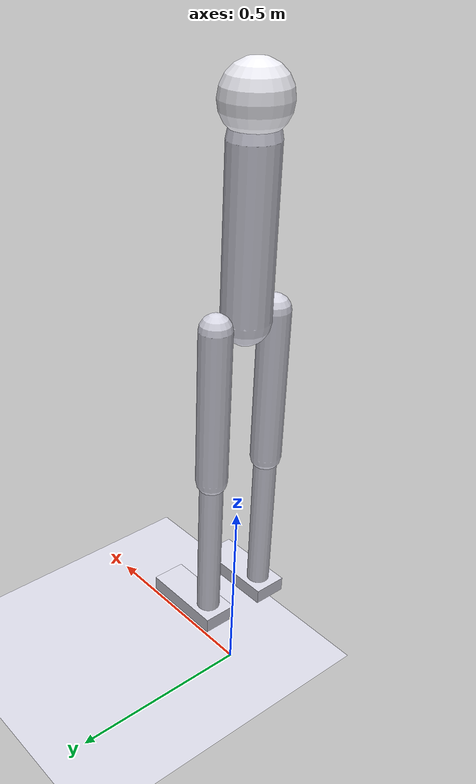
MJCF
<mujoco model="nadir_bipedal_walker">
  <compiler angle="degree" coordinate="local"/>
  <option timestep="0.005" integrator="RK4"/>

  <default>
    <joint limited="true" damping="0.1" armature="0.01"/>
    <geom contype="1" conaffinity="1" friction="1.2 0.1 0.1" rgba="0.85 0.85 0.9 1"/>
    <motor ctrlrange="-1 1" ctrllimited="true"/>
  </default>

  <asset>
    <texture type="skybox" builtin="gradient" width="256" height="256" rgb1="0.15 0.18 0.25" rgb2="0.02 0.03 0.05"/>
    <texture name="texplane" type="2d" builtin="checker" rgb1="0.2 0.25 0.3" rgb2="0.12 0.15 0.18" width="512" height="512"/>
    <material name="MatPlane" texture="texplane" texrepeat="50 50" texuniform="true" reflectance="0.1"/>

    <material name="TorsoMat" rgba="0.15 0.15 0.2 1" specular="0.4" shininess="0.5"/>
    <material name="RightLegMat" rgba="0.9 0.3 0.25 1" specular="0.3" shininess="0.4"/>
    <material name="LeftLegMat" rgba="0.2 0.7 0.85 1" specular="0.3" shininess="0.4"/>
    <material name="FootMat" rgba="0.1 0.1 0.12 1" specular="0.2"/>
  </asset>

  <worldbody>
    <light directional="true" diffuse="0.9 0.9 0.9" specular="0.3 0.3 0.3" pos="0 -2 5" dir="0 0.5 -1"/>
    <light directional="true" diffuse="0.4 0.4 0.5" specular="0.1 0.1 0.1" pos="0 2 3" dir="0 -0.5 -1"/>
    <geom name="floor" type="plane" pos="0 0 0" size="100 100 1" material="MatPlane"/>

    <!-- Torso / Base Body -->
    <body name="torso" pos="0 0 1.25">
      <camera name="track" mode="trackcom" pos="0 -3.2 0.4" xyaxes="1 0 0 0 0 1"/>
      <joint name="rootx" type="slide" axis="1 0 0" pos="0 0 0" limited="false" damping="0" armature="0"/>
      <joint name="rootz" type="slide" axis="0 0 1" pos="0 0 0" limited="false" damping="0" armature="0"/>
      <joint name="rooty" type="hinge" axis="0 1 0" pos="0 0 0" limited="false" damping="0" armature="0"/>

      <!-- Torso Geometry -->
      <geom name="torso_geom" type="capsule" fromto="0 0 -0.2 0 0 0.2" size="0.06" material="TorsoMat" mass="4.0"/>
      <geom name="head_geom" type="sphere" pos="0 0 0.28" size="0.08" rgba="0.95 0.95 0.98 1" mass="1.0"/>
      <site name="imu_site" pos="0 0 0"/>

      <!-- Right Leg (Color: Coral Red) -->
      <body name="thigh_right" pos="0 -0.09 -0.2">
        <joint name="thigh_joint_right" type="hinge" pos="0 0 0" axis="0 1 0" range="-150 0"/>
        <geom name="thigh_geom_right" type="capsule" fromto="0 0 0 0 0 -0.4" size="0.04" material="RightLegMat" mass="1.5"/>
        <body name="leg_right" pos="0 0 -0.4">
          <joint name="leg_joint_right" type="hinge" pos="0 0 0" axis="0 1 0" range="-150 0"/>
          <geom name="leg_geom_right" type="capsule" fromto="0 0 0 0 0 -0.4" size="0.03" material="RightLegMat" mass="1.2"/>
          <body name="foot_right" pos="0 0 -0.4">
            <joint name="foot_joint_right" type="hinge" pos="0 0 0" axis="0 1 0" range="-45 45"/>
            <geom name="foot_geom_right" type="box" pos="0.06 0 -0.02" size="0.11 0.045 0.02" material="FootMat" mass="0.5"/>
            <site name="touch_foot_right" pos="0.06 0 -0.04" size="0.04 0.03 0.01" type="box"/>
          </body>
        </body>
      </body>

      <!-- Left Leg (Color: Cyan Blue) -->
      <body name="thigh_left" pos="0 0.09 -0.2">
        <joint name="thigh_joint_left" type="hinge" pos="0 0 0" axis="0 1 0" range="-150 0"/>
        <geom name="thigh_geom_left" type="capsule" fromto="0 0 0 0 0 -0.4" size="0.04" material="LeftLegMat" mass="1.5"/>
        <body name="leg_left" pos="0 0 -0.4">
          <joint name="leg_joint_left" type="hinge" pos="0 0 0" axis="0 1 0" range="-150 0"/>
          <geom name="leg_geom_left" type="capsule" fromto="0 0 0 0 0 -0.4" size="0.03" material="LeftLegMat" mass="1.2"/>
          <body name="foot_left" pos="0 0 -0.4">
            <joint name="foot_joint_left" type="hinge" pos="0 0 0" axis="0 1 0" range="-45 45"/>
            <geom name="foot_geom_left" type="box" pos="0.06 0 -0.02" size="0.11 0.045 0.02" material="FootMat" mass="0.5"/>
            <site name="touch_foot_left" pos="0.06 0 -0.04" size="0.04 0.03 0.01" type="box"/>
          </body>
        </body>
      </body>
    </body>
  </worldbody>

  <actuator>
    <motor name="thigh_right_motor" joint="thigh_joint_right" gear="100"/>
    <motor name="leg_right_motor" joint="leg_joint_right" gear="100"/>
    <motor name="foot_right_motor" joint="foot_joint_right" gear="50"/>
    <motor name="thigh_left_motor" joint="thigh_joint_left" gear="100"/>
    <motor name="leg_left_motor" joint="leg_joint_left" gear="100"/>
    <motor name="foot_left_motor" joint="foot_joint_left" gear="50"/>
  </actuator>

  <sensor>
    <accelerometer name="imu_accel" site="imu_site"/>
    <gyro name="imu_gyro" site="imu_site"/>
    <touch name="foot_right_contact" site="touch_foot_right"/>
    <touch name="foot_left_contact" site="touch_foot_left"/>
  </sensor>
</mujoco>
